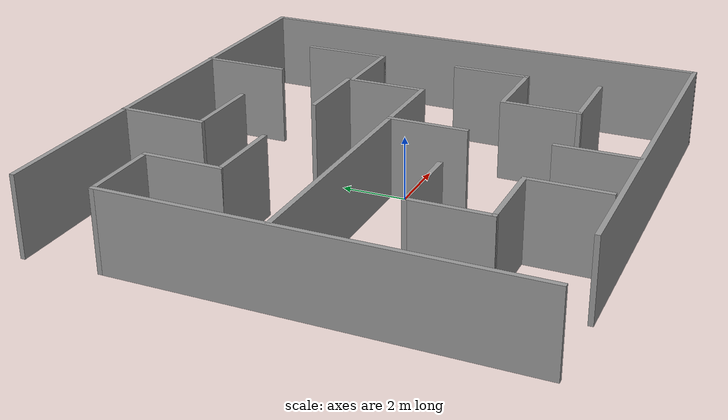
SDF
<?xml version='1.0'?>
<sdf version='1.6'>
  <model name='World_2'>
    <pose frame=''>0.031124 0.561441 0 0 -0 0</pose>
    <link name='Wall_0'>
      <collision name='Wall_0_Collision'>
        <geometry>
          <box>
            <size>2.5 0.15 2.5</size>
          </box>
        </geometry>
        <pose frame=''>0 0 1.25 0 -0 0</pose>
      </collision>
      <visual name='Wall_0_Visual'>
        <pose frame=''>0 0 1.25 0 -0 0</pose>
        <geometry>
          <box>
            <size>2.5 0.15 2.5</size>
          </box>
        </geometry>
        <material>
          <script>
            <uri>file://media/materials/scripts/gazebo.material</uri>
            <name>Gazebo/Grey</name>
          </script>
          <ambient>1 1 1 1</ambient>
        </material>
        <meta>
          <layer>0</layer>
        </meta>
      </visual>
      <pose frame=''>-3.55398 -2.52873 0 0 -0 3.14159</pose>
    </link>
    <link name='Wall_1'>
      <collision name='Wall_1_Collision'>
        <geometry>
          <box>
            <size>2.5 0.15 2.5</size>
          </box>
        </geometry>
        <pose frame=''>0 0 1.25 0 -0 0</pose>
      </collision>
      <visual name='Wall_1_Visual'>
        <pose frame=''>0 0 1.25 0 -0 0</pose>
        <geometry>
          <box>
            <size>2.5 0.15 2.5</size>
          </box>
        </geometry>
        <material>
          <script>
            <uri>file://media/materials/scripts/gazebo.material</uri>
            <name>Gazebo/Grey</name>
          </script>
          <ambient>1 1 1 1</ambient>
        </material>
        <meta>
          <layer>0</layer>
        </meta>
      </visual>
      <pose frame=''>-4.72898 -3.70373 0 0 -0 -1.5708</pose>
    </link>
    <link name='Wall_11'>
      <collision name='Wall_11_Collision'>
        <geometry>
          <box>
            <size>12.5 0.15 2.5</size>
          </box>
        </geometry>
        <pose frame=''>0 0 1.25 0 -0 0</pose>
      </collision>
      <visual name='Wall_11_Visual'>
        <pose frame=''>0 0 1.25 0 -0 0</pose>
        <geometry>
          <box>
            <size>12.5 0.15 2.5</size>
          </box>
        </geometry>
        <material>
          <script>
            <uri>file://media/materials/scripts/gazebo.material</uri>
            <name>Gazebo/Grey</name>
          </script>
          <ambient>1 1 1 1</ambient>
        </material>
        <meta>
          <layer>0</layer>
        </meta>
      </visual>
      <pose frame=''>-7.30933 -1.16667 0 0 -0 1.57076</pose>
    </link>
    <link name='Wall_12'>
      <collision name='Wall_12_Collision'>
        <geometry>
          <box>
            <size>2.5 0.15 2.5</size>
          </box>
        </geometry>
        <pose frame=''>0 0 1.25 0 -0 0</pose>
      </collision>
      <visual name='Wall_12_Visual'>
        <pose frame=''>0 0 1.25 0 -0 0</pose>
        <geometry>
          <box>
            <size>2.5 0.15 2.5</size>
          </box>
        </geometry>
        <material>
          <script>
            <uri>file://media/materials/scripts/gazebo.material</uri>
            <name>Gazebo/Grey</name>
          </script>
          <ambient>1 1 1 1</ambient>
        </material>
        <meta>
          <layer>0</layer>
        </meta>
      </visual>
      <pose frame=''>-6.13412 5.00856 0 0 -0 0</pose>
    </link>
    <link name='Wall_13'>
      <collision name='Wall_13_Collision'>
        <geometry>
          <box>
            <size>2.5 0.15 2.5</size>
          </box>
        </geometry>
        <pose frame=''>0 0 1.25 0 -0 0</pose>
      </collision>
      <visual name='Wall_13_Visual'>
        <pose frame=''>0 0 1.25 0 -0 0</pose>
        <geometry>
          <box>
            <size>2.5 0.15 2.5</size>
          </box>
        </geometry>
        <material>
          <script>
            <uri>file://media/materials/scripts/gazebo.material</uri>
            <name>Gazebo/Grey</name>
          </script>
          <ambient>1 1 1 1</ambient>
        </material>
        <meta>
          <layer>0</layer>
        </meta>
      </visual>
      <pose frame=''>-4.95912 3.83356 0 0 -0 -1.5708</pose>
    </link>
    <link name='Wall_14'>
      <collision name='Wall_14_Collision'>
        <geometry>
          <box>
            <size>2.5 0.15 2.5</size>
          </box>
        </geometry>
        <pose frame=''>0 0 1.25 0 -0 0</pose>
      </collision>
      <visual name='Wall_14_Visual'>
        <pose frame=''>0 0 1.25 0 -0 0</pose>
        <geometry>
          <box>
            <size>2.5 0.15 2.5</size>
          </box>
        </geometry>
        <material>
          <script>
            <uri>file://media/materials/scripts/gazebo.material</uri>
            <name>Gazebo/Grey</name>
          </script>
          <ambient>1 1 1 1</ambient>
        </material>
        <meta>
          <layer>0</layer>
        </meta>
      </visual>
      <pose frame=''>-3.78412 2.65856 0 0 -0 0</pose>
    </link>
    <link name='Wall_16'>
      <collision name='Wall_16_Collision'>
        <geometry>
          <box>
            <size>10 0.15 2.5</size>
          </box>
        </geometry>
        <pose frame=''>0 0 1.25 0 -0 0</pose>
      </collision>
      <visual name='Wall_16_Visual'>
        <pose frame=''>0 0 1.25 0 -0 0</pose>
        <geometry>
          <box>
            <size>10 0.15 2.5</size>
          </box>
        </geometry>
        <material>
          <script>
            <uri>file://media/materials/scripts/gazebo.material</uri>
            <name>Gazebo/Grey</name>
          </script>
          <ambient>1 1 1 1</ambient>
        </material>
        <meta>
          <layer>0</layer>
        </meta>
      </visual>
      <pose frame=''>-2.38048 -0.04414 0 0 -0 0</pose>
    </link>
    <link name='Wall_17'>
      <collision name='Wall_17_Collision'>
        <geometry>
          <box>
            <size>2.5 0.15 2.5</size>
          </box>
        </geometry>
        <pose frame=''>0 0 1.25 0 -0 0</pose>
      </collision>
      <visual name='Wall_17_Visual'>
        <pose frame=''>0 0 1.25 0 -0 0</pose>
        <geometry>
          <box>
            <size>2.5 0.15 2.5</size>
          </box>
        </geometry>
        <material>
          <script>
            <uri>file://media/materials/scripts/gazebo.material</uri>
            <name>Gazebo/Grey</name>
          </script>
          <ambient>1 1 1 1</ambient>
        </material>
        <meta>
          <layer>0</layer>
        </meta>
      </visual>
      <pose frame=''>2.54452 1.13086 0 0 -0 1.5708</pose>
    </link>
    <link name='Wall_18'>
      <collision name='Wall_18_Collision'>
        <geometry>
          <box>
            <size>2.5 0.15 2.5</size>
          </box>
        </geometry>
        <pose frame=''>0 0 1.25 0 -0 0</pose>
      </collision>
      <visual name='Wall_18_Visual'>
        <pose frame=''>0 0 1.25 0 -0 0</pose>
        <geometry>
          <box>
            <size>2.5 0.15 2.5</size>
          </box>
        </geometry>
        <material>
          <script>
            <uri>file://media/materials/scripts/gazebo.material</uri>
            <name>Gazebo/Grey</name>
          </script>
          <ambient>1 1 1 1</ambient>
        </material>
        <meta>
          <layer>0</layer>
        </meta>
      </visual>
      <pose frame=''>3.71952 2.30586 0 0 -0 0</pose>
    </link>
    <link name='Wall_19'>
      <collision name='Wall_19_Collision'>
        <geometry>
          <box>
            <size>2.75 0.15 2.5</size>
          </box>
        </geometry>
        <pose frame=''>0 0 1.25 0 -0 0</pose>
      </collision>
      <visual name='Wall_19_Visual'>
        <pose frame=''>0 0 1.25 0 -0 0</pose>
        <geometry>
          <box>
            <size>2.75 0.15 2.5</size>
          </box>
        </geometry>
        <material>
          <script>
            <uri>file://media/materials/scripts/gazebo.material</uri>
            <name>Gazebo/Grey</name>
          </script>
          <ambient>1 1 1 1</ambient>
        </material>
        <meta>
          <layer>0</layer>
        </meta>
      </visual>
      <pose frame=''>4.89452 3.60586 0 0 -0 1.5708</pose>
    </link>
    <link name='Wall_2'>
      <collision name='Wall_2_Collision'>
        <geometry>
          <box>
            <size>2.5 0.15 2.5</size>
          </box>
        </geometry>
        <pose frame=''>0 0 1.25 0 -0 0</pose>
      </collision>
      <visual name='Wall_2_Visual'>
        <pose frame=''>0 0 1.25 0 -0 0</pose>
        <geometry>
          <box>
            <size>2.5 0.15 2.5</size>
          </box>
        </geometry>
        <material>
          <script>
            <uri>file://media/materials/scripts/gazebo.material</uri>
            <name>Gazebo/Grey</name>
          </script>
          <ambient>1 1 1 1</ambient>
        </material>
        <meta>
          <layer>0</layer>
        </meta>
      </visual>
      <pose frame=''>-3.55398 -4.87873 0 0 -0 0</pose>
    </link>
    <link name='Wall_21'>
      <collision name='Wall_21_Collision'>
        <geometry>
          <box>
            <size>2.5 0.15 2.5</size>
          </box>
        </geometry>
        <pose frame=''>0 0 1.25 0 -0 0</pose>
      </collision>
      <visual name='Wall_21_Visual'>
        <pose frame=''>0 0 1.25 0 -0 0</pose>
        <geometry>
          <box>
            <size>2.5 0.15 2.5</size>
          </box>
        </geometry>
        <material>
          <script>
            <uri>file://media/materials/scripts/gazebo.material</uri>
            <name>Gazebo/Grey</name>
          </script>
          <ambient>1 1 1 1</ambient>
        </material>
        <meta>
          <layer>0</layer>
        </meta>
      </visual>
      <pose frame=''>1.32028 2.44819 0 0 -0 0</pose>
    </link>
    <link name='Wall_23'>
      <collision name='Wall_23_Collision'>
        <geometry>
          <box>
            <size>2.5 0.15 2.5</size>
          </box>
        </geometry>
        <pose frame=''>0 0 1.25 0 -0 0</pose>
      </collision>
      <visual name='Wall_23_Visual'>
        <pose frame=''>0 0 1.25 0 -0 0</pose>
        <geometry>
          <box>
            <size>2.5 0.15 2.5</size>
          </box>
        </geometry>
        <material>
          <script>
            <uri>file://media/materials/scripts/gazebo.material</uri>
            <name>Gazebo/Grey</name>
          </script>
          <ambient>1 1 1 1</ambient>
        </material>
        <meta>
          <layer>0</layer>
        </meta>
      </visual>
      <pose frame=''>0.047138 -1.21968 0 0 -0 -1.5708</pose>
    </link>
    <link name='Wall_25'>
      <collision name='Wall_25_Collision'>
        <geometry>
          <box>
            <size>2.75 0.15 2.5</size>
          </box>
        </geometry>
        <pose frame=''>0 0 1.25 0 -0 0</pose>
      </collision>
      <visual name='Wall_25_Visual'>
        <pose frame=''>0 0 1.25 0 -0 0</pose>
        <geometry>
          <box>
            <size>2.75 0.15 2.5</size>
          </box>
        </geometry>
        <material>
          <script>
            <uri>file://media/materials/scripts/gazebo.material</uri>
            <name>Gazebo/Grey</name>
          </script>
          <ambient>1 1 1 1</ambient>
        </material>
        <meta>
          <layer>0</layer>
        </meta>
      </visual>
      <pose frame=''>-2.38717 6.13344 0 0 -0 -1.57076</pose>
    </link>
    <link name='Wall_26'>
      <collision name='Wall_26_Collision'>
        <geometry>
          <box>
            <size>2.5 0.15 2.5</size>
          </box>
        </geometry>
        <pose frame=''>0 0 1.25 0 -0 0</pose>
      </collision>
      <visual name='Wall_26_Visual'>
        <pose frame=''>0 0 1.25 0 -0 0</pose>
        <geometry>
          <box>
            <size>2.5 0.15 2.5</size>
          </box>
        </geometry>
        <material>
          <script>
            <uri>file://media/materials/scripts/gazebo.material</uri>
            <name>Gazebo/Grey</name>
          </script>
          <ambient>1 1 1 1</ambient>
        </material>
        <meta>
          <layer>0</layer>
        </meta>
      </visual>
      <pose frame=''>-1.21212 4.83356 0 0 -0 0</pose>
    </link>
    <link name='Wall_28'>
      <collision name='Wall_28_Collision'>
        <geometry>
          <box>
            <size>2.75 0.15 2.5</size>
          </box>
        </geometry>
        <pose frame=''>0 0 1.25 0 -0 0</pose>
      </collision>
      <visual name='Wall_28_Visual'>
        <pose frame=''>0 0 1.25 0 -0 0</pose>
        <geometry>
          <box>
            <size>2.75 0.15 2.5</size>
          </box>
        </geometry>
        <material>
          <script>
            <uri>file://media/materials/scripts/gazebo.material</uri>
            <name>Gazebo/Grey</name>
          </script>
          <ambient>1 1 1 1</ambient>
        </material>
        <meta>
          <layer>0</layer>
        </meta>
      </visual>
      <pose frame=''>2.50039 6.13333 0 0 -0 -1.5708</pose>
    </link>
    <link name='Wall_3'>
      <collision name='Wall_3_Collision'>
        <geometry>
          <box>
            <size>2.5 0.15 2.5</size>
          </box>
        </geometry>
        <pose frame=''>0 0 1.25 0 -0 0</pose>
      </collision>
      <visual name='Wall_3_Visual'>
        <pose frame=''>0 0 1.25 0 -0 0</pose>
        <geometry>
          <box>
            <size>2.5 0.15 2.5</size>
          </box>
        </geometry>
        <material>
          <script>
            <uri>file://media/materials/scripts/gazebo.material</uri>
            <name>Gazebo/Grey</name>
          </script>
          <ambient>1 1 1 1</ambient>
        </material>
        <meta>
          <layer>0</layer>
        </meta>
      </visual>
      <pose frame=''>-2.37898 -6.05373 0 0 -0 -1.5708</pose>
    </link>
    <link name='Wall_30'>
      <collision name='Wall_30_Collision'>
        <geometry>
          <box>
            <size>2.5 0.15 2.5</size>
          </box>
        </geometry>
        <pose frame=''>0 0 1.25 0 -0 0</pose>
      </collision>
      <visual name='Wall_30_Visual'>
        <pose frame=''>0 0 1.25 0 -0 0</pose>
        <geometry>
          <box>
            <size>2.5 0.15 2.5</size>
          </box>
        </geometry>
        <material>
          <script>
            <uri>file://media/materials/scripts/gazebo.material</uri>
            <name>Gazebo/Grey</name>
          </script>
          <ambient>1 1 1 1</ambient>
        </material>
        <meta>
          <layer>0</layer>
        </meta>
      </visual>
      <pose frame=''>3.76888 -4.99644 0 0 -0 3.14159</pose>
    </link>
    <link name='Wall_31'>
      <collision name='Wall_31_Collision'>
        <geometry>
          <box>
            <size>2.5 0.15 2.5</size>
          </box>
        </geometry>
        <pose frame=''>0 0 1.25 0 -0 0</pose>
      </collision>
      <visual name='Wall_31_Visual'>
        <pose frame=''>0 0 1.25 0 -0 0</pose>
        <geometry>
          <box>
            <size>2.5 0.15 2.5</size>
          </box>
        </geometry>
        <material>
          <script>
            <uri>file://media/materials/scripts/gazebo.material</uri>
            <name>Gazebo/Grey</name>
          </script>
          <ambient>1 1 1 1</ambient>
        </material>
        <meta>
          <layer>0</layer>
        </meta>
      </visual>
      <pose frame=''>2.59388 -3.82144 0 0 -0 1.5708</pose>
    </link>
    <link name='Wall_32'>
      <collision name='Wall_32_Collision'>
        <geometry>
          <box>
            <size>2.5 0.15 2.5</size>
          </box>
        </geometry>
        <pose frame=''>0 0 1.25 0 -0 0</pose>
      </collision>
      <visual name='Wall_32_Visual'>
        <pose frame=''>0 0 1.25 0 -0 0</pose>
        <geometry>
          <box>
            <size>2.5 0.15 2.5</size>
          </box>
        </geometry>
        <material>
          <script>
            <uri>file://media/materials/scripts/gazebo.material</uri>
            <name>Gazebo/Grey</name>
          </script>
          <ambient>1 1 1 1</ambient>
        </material>
        <meta>
          <layer>0</layer>
        </meta>
      </visual>
      <pose frame=''>3.76888 -2.64644 0 0 -0 0</pose>
    </link>
    <link name='Wall_33'>
      <collision name='Wall_33_Collision'>
        <geometry>
          <box>
            <size>2.5 0.15 2.5</size>
          </box>
        </geometry>
        <pose frame=''>0 0 1.25 0 -0 0</pose>
      </collision>
      <visual name='Wall_33_Visual'>
        <pose frame=''>0 0 1.25 0 -0 0</pose>
        <geometry>
          <box>
            <size>2.5 0.15 2.5</size>
          </box>
        </geometry>
        <material>
          <script>
            <uri>file://media/materials/scripts/gazebo.material</uri>
            <name>Gazebo/Grey</name>
          </script>
          <ambient>1 1 1 1</ambient>
        </material>
        <meta>
          <layer>0</layer>
        </meta>
      </visual>
      <pose frame=''>4.94403 -1.47165 0 0 -0 1.57066</pose>
    </link>
    <link name='Wall_5'>
      <collision name='Wall_5_Collision'>
        <geometry>
          <box>
            <size>12.25 0.15 2.5</size>
          </box>
        </geometry>
        <pose frame=''>0 0 1.25 0 -0 0</pose>
      </collision>
      <visual name='Wall_5_Visual'>
        <pose frame=''>0 0 1.25 0 -0 0</pose>
        <geometry>
          <box>
            <size>12.25 0.15 2.5</size>
          </box>
        </geometry>
        <material>
          <script>
            <uri>file://media/materials/scripts/gazebo.material</uri>
            <name>Gazebo/Grey</name>
          </script>
          <ambient>1 1 1 1</ambient>
        </material>
        <meta>
          <layer>0</layer>
        </meta>
      </visual>
      <pose frame=''>1.37512 -7.43326 0 0 -0 -3e-05</pose>
    </link>
    <link name='Wall_6'>
      <collision name='Wall_6_Collision'>
        <geometry>
          <box>
            <size>15 0.15 2.5</size>
          </box>
        </geometry>
        <pose frame=''>0 0 1.25 0 -0 0</pose>
      </collision>
      <visual name='Wall_6_Visual'>
        <pose frame=''>0 0 1.25 0 -0 0</pose>
        <geometry>
          <box>
            <size>15 0.15 2.5</size>
          </box>
        </geometry>
        <material>
          <script>
            <uri>file://media/materials/scripts/gazebo.material</uri>
            <name>Gazebo/Grey</name>
          </script>
          <ambient>1 1 1 1</ambient>
        </material>
        <meta>
          <layer>0</layer>
        </meta>
      </visual>
      <pose frame=''>7.42488 -0.008441 0 0 -0 1.5708</pose>
    </link>
    <link name='Wall_7'>
      <collision name='Wall_7_Collision'>
        <geometry>
          <box>
            <size>15 0.15 2.5</size>
          </box>
        </geometry>
        <pose frame=''>0 0 1.25 0 -0 0</pose>
      </collision>
      <visual name='Wall_7_Visual'>
        <pose frame=''>0 0 1.25 0 -0 0</pose>
        <geometry>
          <box>
            <size>15 0.15 2.5</size>
          </box>
        </geometry>
        <material>
          <script>
            <uri>file://media/materials/scripts/gazebo.material</uri>
            <name>Gazebo/Grey</name>
          </script>
          <ambient>1 1 1 1</ambient>
        </material>
        <meta>
          <layer>0</layer>
        </meta>
      </visual>
      <pose frame=''>-0.000124 7.41656 0 0 -0 3.14159</pose>
    </link>
    <link name='Wall_9'>
      <collision name='Wall_9_Collision'>
        <geometry>
          <box>
            <size>2.5 0.15 2.5</size>
          </box>
        </geometry>
        <pose frame=''>0 0 1.25 0 -0 0</pose>
      </collision>
      <visual name='Wall_9_Visual'>
        <pose frame=''>0 0 1.25 0 -0 0</pose>
        <geometry>
          <box>
            <size>2.5 0.15 2.5</size>
          </box>
        </geometry>
        <material>
          <script>
            <uri>file://media/materials/scripts/gazebo.material</uri>
            <name>Gazebo/Grey</name>
          </script>
          <ambient>1 1 1 1</ambient>
        </material>
        <meta>
          <layer>0</layer>
        </meta>
      </visual>
      <pose frame=''>0.04167 -6.18142 0 0 -0 1.5708</pose>
    </link>
    <static>1</static>
  </model>
</sdf>
